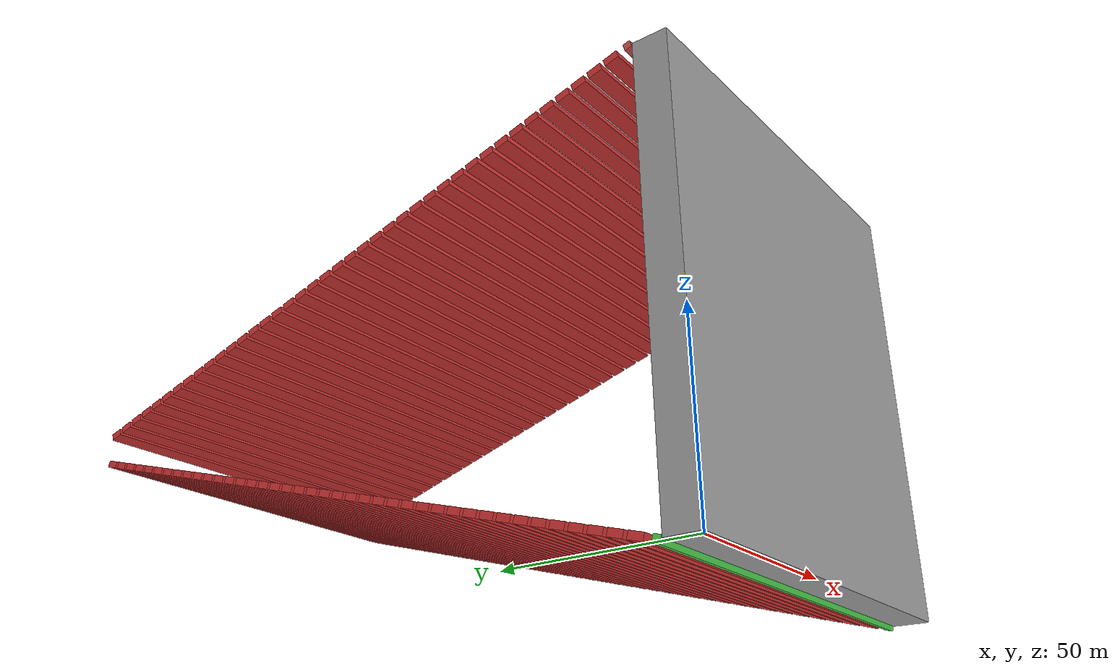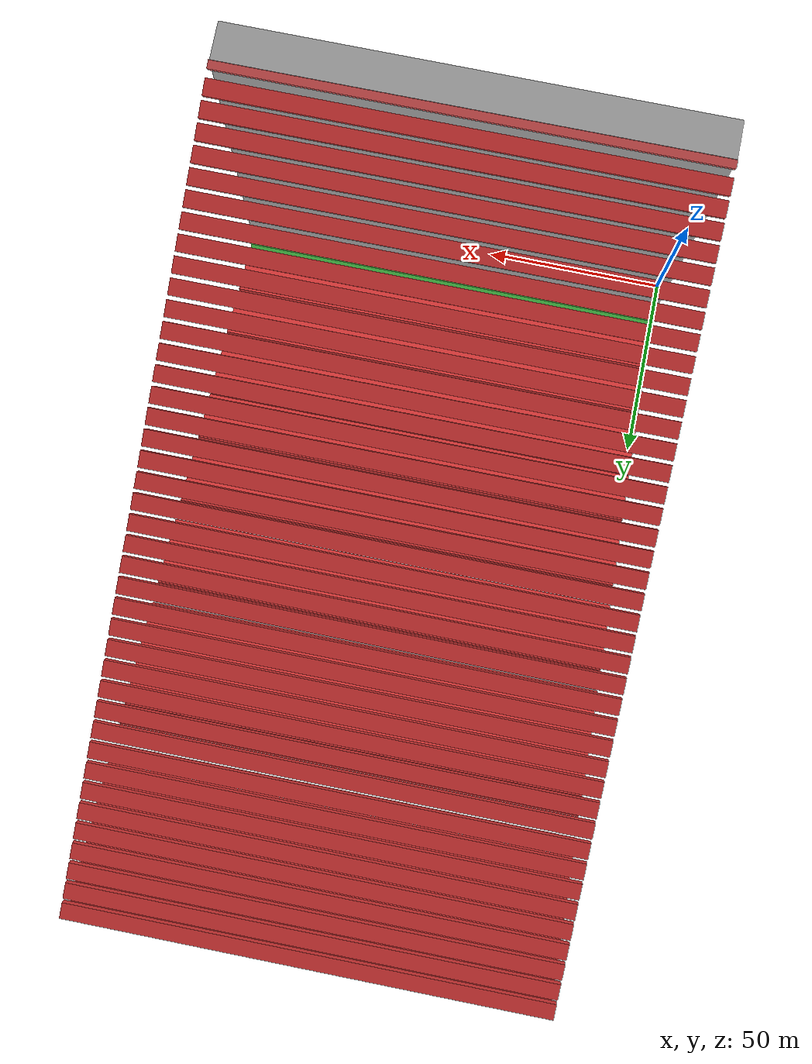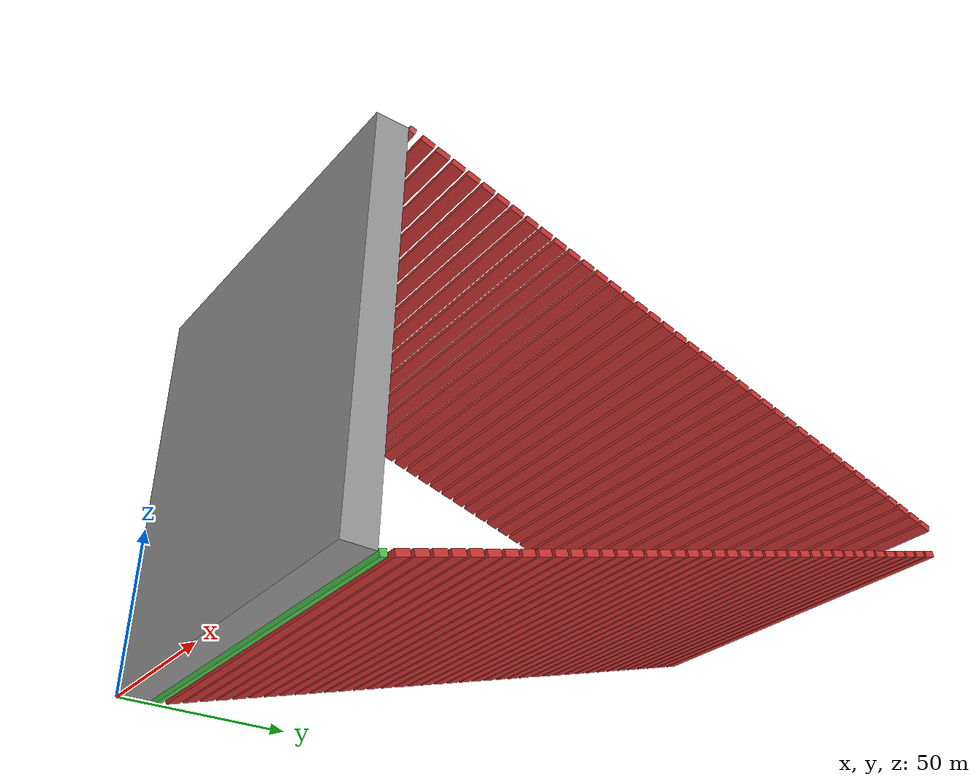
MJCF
<?xml version="1.0" ?>
<mujoco>
  <worldbody>
    <body name="base_box" pos="60 4.77 60.877">
      <geom type="box" size="60 4.7 60" rgba="0.6 0.6 0.6 1" density="1"/>
      <body name="small_box_1" pos="0 6 60" euler="-16 0 0">
        <geom type="box" size="60 1 1" rgba="0.8 0.3 0.3 1"/>
        <joint type="hinge" name="joint_0" axis="1 0 0" pos="0 0 0" range="-90 90" stiffness="50000" damping="0" springref="0"/>
        <body name="block_2" pos="0 5 0">
          <geom type="box" size="60 2 1" rgba="0.8 0.2 0.2 1" density="1000"/>
          <joint type="hinge" name="joint_2" axis="1 0 0" range="-90 90" pos="0 0 0" stiffness="50000" damping="0" springref="0" actuatorfrclimited="false"/>
          <body name="block_3" pos="0 5 0">
            <geom type="box" size="60 2 1" rgba="0.8 0.2 0.2 1" density="1000"/>
            <joint type="hinge" name="joint_3" axis="1 0 0" range="-90 90" pos="0 0 0" stiffness="50000" damping="0" springref="0" actuatorfrclimited="false"/>
            <body name="block_4" pos="0 5 0">
              <geom type="box" size="60 2 1" rgba="0.8 0.2 0.2 1" density="1000"/>
              <joint type="hinge" name="joint_4" axis="1 0 0" range="-90 90" pos="0 0 0" stiffness="50000" damping="0" springref="0" actuatorfrclimited="false"/>
              <body name="block_5" pos="0 5 0">
                <geom type="box" size="60 2 1" rgba="0.8 0.2 0.2 1" density="1000"/>
                <joint type="hinge" name="joint_5" axis="1 0 0" range="-90 90" pos="0 0 0" stiffness="50000" damping="0" springref="0" actuatorfrclimited="false"/>
                <body name="block_6" pos="0 5 0">
                  <geom type="box" size="60 2 1" rgba="0.8 0.2 0.2 1" density="1000"/>
                  <joint type="hinge" name="joint_6" axis="1 0 0" range="-90 90" pos="0 0 0" stiffness="50000" damping="0" springref="0" actuatorfrclimited="false"/>
                  <body name="block_7" pos="0 5 0">
                    <geom type="box" size="60 2 1" rgba="0.8 0.2 0.2 1" density="1000"/>
                    <joint type="hinge" name="joint_7" axis="1 0 0" range="-90 90" pos="0 0 0" stiffness="50000" damping="0" springref="0" actuatorfrclimited="false"/>
                    <body name="block_8" pos="0 5 0">
                      <geom type="box" size="60 2 1" rgba="0.8 0.2 0.2 1" density="1000"/>
                      <joint type="hinge" name="joint_8" axis="1 0 0" range="-90 90" pos="0 0 0" stiffness="50000" damping="0" springref="0" actuatorfrclimited="false"/>
                      <body name="block_9" pos="0 5 0">
                        <geom type="box" size="60 2 1" rgba="0.8 0.2 0.2 1" density="1000"/>
                        <joint type="hinge" name="joint_9" axis="1 0 0" range="-90 90" pos="0 0 0" stiffness="50000" damping="0" springref="0" actuatorfrclimited="false"/>
                        <body name="block_10" pos="0 5 0">
                          <geom type="box" size="60 2 1" rgba="0.8 0.2 0.2 1" density="1000"/>
                          <joint type="hinge" name="joint_10" axis="1 0 0" range="-90 90" pos="0 0 0" stiffness="50000" damping="0" springref="0" actuatorfrclimited="false"/>
                          <body name="block_11" pos="0 5 0">
                            <geom type="box" size="60 2 1" rgba="0.8 0.2 0.2 1" density="1000"/>
                            <joint type="hinge" name="joint_11" axis="1 0 0" range="-90 90" pos="0 0 0" stiffness="50000" damping="0" springref="0" actuatorfrclimited="false"/>
                            <body name="block_12" pos="0 5 0">
                              <geom type="box" size="60 2 1" rgba="0.8 0.2 0.2 1" density="1000"/>
                              <joint type="hinge" name="joint_12" axis="1 0 0" range="-90 90" pos="0 0 0" stiffness="50000" damping="0" springref="0" actuatorfrclimited="false"/>
                              <body name="block_13" pos="0 5 0">
                                <geom type="box" size="60 2 1" rgba="0.8 0.2 0.2 1" density="1000"/>
                                <joint type="hinge" name="joint_13" axis="1 0 0" range="-90 90" pos="0 0 0" stiffness="50000" damping="0" springref="0" actuatorfrclimited="false"/>
                                <body name="block_14" pos="0 5 0">
                                  <geom type="box" size="60 2 1" rgba="0.8 0.2 0.2 1" density="1000"/>
                                  <joint type="hinge" name="joint_14" axis="1 0 0" range="-90 90" pos="0 0 0" stiffness="50000" damping="0" springref="0" actuatorfrclimited="false"/>
                                  <body name="block_15" pos="0 5 0">
                                    <geom type="box" size="60 2 1" rgba="0.8 0.2 0.2 1" density="1000"/>
                                    <joint type="hinge" name="joint_15" axis="1 0 0" range="-90 90" pos="0 0 0" stiffness="50000" damping="0" springref="0" actuatorfrclimited="false"/>
                                    <body name="block_16" pos="0 5 0">
                                      <geom type="box" size="60 2 1" rgba="0.8 0.2 0.2 1" density="1000"/>
                                      <joint type="hinge" name="joint_16" axis="1 0 0" range="-90 90" pos="0 0 0" stiffness="50000" damping="0" springref="0" actuatorfrclimited="false"/>
                                      <body name="block_17" pos="0 5 0">
                                        <geom type="box" size="60 2 1" rgba="0.8 0.2 0.2 1" density="1000"/>
                                        <joint type="hinge" name="joint_17" axis="1 0 0" range="-90 90" pos="0 0 0" stiffness="50000" damping="0" springref="0" actuatorfrclimited="false"/>
                                        <body name="block_18" pos="0 5 0">
                                          <geom type="box" size="60 2 1" rgba="0.8 0.2 0.2 1" density="1000"/>
                                          <joint type="hinge" name="joint_18" axis="1 0 0" range="-90 90" pos="0 0 0" stiffness="50000" damping="0" springref="0" actuatorfrclimited="false"/>
                                          <body name="block_19" pos="0 5 0">
                                            <geom type="box" size="60 2 1" rgba="0.8 0.2 0.2 1" density="1000"/>
                                            <joint type="hinge" name="joint_19" axis="1 0 0" range="-90 90" pos="0 0 0" stiffness="50000" damping="0" springref="0" actuatorfrclimited="false"/>
                                            <body name="block_20" pos="0 5 0">
                                              <geom type="box" size="60 2 1" rgba="0.8 0.2 0.2 1" density="1000"/>
                                              <joint type="hinge" name="joint_20" axis="1 0 0" range="-90 90" pos="0 0 0" stiffness="50000" damping="0" springref="0" actuatorfrclimited="false"/>
                                              <body name="block_21" pos="0 5 0">
                                                <geom type="box" size="60 2 1" rgba="0.8 0.2 0.2 1" density="1000"/>
                                                <joint type="hinge" name="joint_21" axis="1 0 0" range="-90 90" pos="0 0 0" stiffness="50000" damping="0" springref="0" actuatorfrclimited="false"/>
                                                <body name="block_22" pos="0 5 0">
                                                  <geom type="box" size="60 2 1" rgba="0.8 0.2 0.2 1" density="1000"/>
                                                  <joint type="hinge" name="joint_22" axis="1 0 0" range="-90 90" pos="0 0 0" stiffness="50000" damping="0" springref="0" actuatorfrclimited="false"/>
                                                  <body name="block_23" pos="0 5 0">
                                                    <geom type="box" size="60 2 1" rgba="0.8 0.2 0.2 1" density="1000"/>
                                                    <joint type="hinge" name="joint_23" axis="1 0 0" range="-90 90" pos="0 0 0" stiffness="50000" damping="0" springref="0" actuatorfrclimited="false"/>
                                                    <body name="block_24" pos="0 5 0">
                                                      <geom type="box" size="60 2 1" rgba="0.8 0.2 0.2 1" density="1000"/>
                                                      <joint type="hinge" name="joint_24" axis="1 0 0" range="-90 90" pos="0 0 0" stiffness="50000" damping="0" springref="0" actuatorfrclimited="false"/>
                                                      <body name="block_25" pos="0 5 0">
                                                        <geom type="box" size="60 2 1" rgba="0.8 0.2 0.2 1" density="1000"/>
                                                        <joint type="hinge" name="joint_25" axis="1 0 0" range="-90 90" pos="0 0 0" stiffness="50000" damping="0" springref="0" actuatorfrclimited="false"/>
                                                        <body name="block_26" pos="0 5 0">
                                                          <geom type="box" size="60 2 1" rgba="0.8 0.2 0.2 1" density="1000"/>
                                                          <joint type="hinge" name="joint_26" axis="1 0 0" range="-90 90" pos="0 0 0" stiffness="50000" damping="0" springref="0" actuatorfrclimited="false"/>
                                                          <body name="block_27" pos="0 5 0">
                                                            <geom type="box" size="60 2 1" rgba="0.8 0.2 0.2 1" density="1000"/>
                                                            <joint type="hinge" name="joint_27" axis="1 0 0" range="-90 90" pos="0 0 0" stiffness="50000" damping="0" springref="0" actuatorfrclimited="false"/>
                                                            <body name="block_28" pos="0 5 0">
                                                              <geom type="box" size="60 2 1" rgba="0.8 0.2 0.2 1" density="1000"/>
                                                              <joint type="hinge" name="joint_28" axis="1 0 0" range="-90 90" pos="0 0 0" stiffness="50000" damping="0" springref="0" actuatorfrclimited="false"/>
                                                              <body name="block_29" pos="0 5 0">
                                                                <geom type="box" size="60 2 1" rgba="0.8 0.2 0.2 1" density="1000"/>
                                                                <joint type="hinge" name="joint_29" axis="1 0 0" range="-90 90" pos="0 0 0" stiffness="50000" damping="0" springref="0" actuatorfrclimited="false"/>
                                                                <body name="block_30" pos="0 5 0">
                                                                  <geom type="box" size="60 2 1" rgba="0.8 0.2 0.2 1" density="1000"/>
                                                                  <joint type="hinge" name="joint_30" axis="1 0 0" range="-90 90" pos="0 0 0" stiffness="50000" damping="0" springref="0" actuatorfrclimited="false"/>
                                                                  <body name="block_31" pos="0 5 0">
                                                                    <geom type="box" size="60 2 1" rgba="0.8 0.2 0.2 1" density="1000"/>
                                                                    <joint type="hinge" name="joint_31" axis="1 0 0" range="-90 90" pos="0 0 0" stiffness="50000" damping="0" springref="0" actuatorfrclimited="false"/>
                                                                    <body name="block_32" pos="0 5 0">
                                                                      <geom type="box" size="60 2 1" rgba="0.8 0.2 0.2 1" density="1000"/>
                                                                      <joint type="hinge" name="joint_32" axis="1 0 0" range="-90 90" pos="0 0 0" stiffness="50000" damping="0" springref="0" actuatorfrclimited="false"/>
                                                                      <body name="block_33" pos="0 5 0">
                                                                        <geom type="box" size="60 2 1" rgba="0.8 0.2 0.2 1" density="1000"/>
                                                                        <joint type="hinge" name="joint_33" axis="1 0 0" range="-90 90" pos="0 0 0" stiffness="50000" damping="0" springref="0" actuatorfrclimited="false"/>
                                                                        <body name="block_34" pos="0 5 0">
                                                                          <geom type="box" size="60 2 1" rgba="0.8 0.2 0.2 1" density="1000"/>
                                                                          <joint type="hinge" name="joint_34" axis="1 0 0" range="-90 90" pos="0 0 0" stiffness="50000" damping="0" springref="0" actuatorfrclimited="false"/>
                                                                          <body name="block_35" pos="0 5 0">
                                                                            <geom type="box" size="60 2 1" rgba="0.8 0.2 0.2 1" density="1000"/>
                                                                            <joint type="hinge" name="joint_35" axis="1 0 0" range="-90 90" pos="0 0 0" stiffness="50000" damping="0" springref="0" actuatorfrclimited="false"/>
                                                                            <body name="block_36" pos="0 5 0">
                                                                              <geom type="box" size="60 2 1" rgba="0.8 0.2 0.2 1" density="1000"/>
                                                                              <joint type="hinge" name="joint_36" axis="1 0 0" range="-90 90" pos="0 0 0" stiffness="50000" damping="0" springref="0" actuatorfrclimited="false"/>
                                                                              <body name="block_37" pos="0 5 0">
                                                                                <geom type="box" size="60 2 1" rgba="0.8 0.2 0.2 1" density="1000"/>
                                                                                <joint type="hinge" name="joint_37" axis="1 0 0" range="-90 90" pos="0 0 0" stiffness="50000" damping="0" springref="0" actuatorfrclimited="false"/>
                                                                                <body name="block_38" pos="0 5 0">
                                                                                  <geom type="box" size="60 2 1" rgba="0.8 0.2 0.2 1" density="1000"/>
                                                                                  <joint type="hinge" name="joint_38" axis="1 0 0" range="-90 90" pos="0 0 0" stiffness="50000" damping="0" springref="0" actuatorfrclimited="false"/>
                                                                                  <body name="block_39" pos="0 5 0">
                                                                                    <geom type="box" size="60 2 1" rgba="0.8 0.2 0.2 1" density="1000"/>
                                                                                    <joint type="hinge" name="joint_39" axis="1 0 0" range="-90 90" pos="0 0 0" stiffness="50000" damping="0" springref="0" actuatorfrclimited="false"/>
                                                                                    <body name="block_40" pos="0 5 0">
                                                                                      <geom type="box" size="60 2 1" rgba="0.8 0.2 0.2 1" density="1000"/>
                                                                                      <joint type="hinge" name="joint_40" axis="1 0 0" range="-90 90" pos="0 0 0" stiffness="50000" damping="0" springref="0" actuatorfrclimited="false"/>
                                                                                      <body name="block_41" pos="0 5 0">
                                                                                        <geom type="box" size="60 2 1" rgba="0.8 0.2 0.2 1" density="1000"/>
                                                                                        <joint type="hinge" name="joint_41" axis="1 0 0" range="-90 90" pos="0 0 0" stiffness="50000" damping="0" springref="0" actuatorfrclimited="false"/>
                                                                                      </body>
                                                                                    </body>
                                                                                  </body>
                                                                                </body>
                                                                              </body>
                                                                            </body>
                                                                          </body>
                                                                        </body>
                                                                      </body>
                                                                    </body>
                                                                  </body>
                                                                </body>
                                                              </body>
                                                            </body>
                                                          </body>
                                                        </body>
                                                      </body>
                                                    </body>
                                                  </body>
                                                </body>
                                              </body>
                                            </body>
                                          </body>
                                        </body>
                                      </body>
                                    </body>
                                  </body>
                                </body>
                              </body>
                            </body>
                          </body>
                        </body>
                      </body>
                    </body>
                  </body>
                </body>
              </body>
            </body>
          </body>
        </body>
      </body>
      <body name="small_box_2" pos="0 6 -60" euler="16 0 0">
        <geom type="box" size="60 1 1" rgba="0.3 0.8 0.3 1"/>
        <joint type="hinge" name="joint_1" axis="1 0 0" pos="0 0 0" range="-90 90" stiffness="50000" damping="0" springref="0"/>
        <body name="block_42" pos="0 5 0">
          <geom type="box" size="60 2 1" rgba="0.8 0.2 0.2 1" density="1000"/>
          <joint type="hinge" name="joint_42" axis="1 0 0" range="-90 90" pos="0 0 0" stiffness="50000" damping="0" springref="0" actuatorfrclimited="false"/>
          <body name="block_43" pos="0 5 0">
            <geom type="box" size="60 2 1" rgba="0.8 0.2 0.2 1" density="1000"/>
            <joint type="hinge" name="joint_43" axis="1 0 0" range="-90 90" pos="0 0 0" stiffness="50000" damping="0" springref="0" actuatorfrclimited="false"/>
            <body name="block_44" pos="0 5 0">
              <geom type="box" size="60 2 1" rgba="0.8 0.2 0.2 1" density="1000"/>
              <joint type="hinge" name="joint_44" axis="1 0 0" range="-90 90" pos="0 0 0" stiffness="50000" damping="0" springref="0" actuatorfrclimited="false"/>
              <body name="block_45" pos="0 5 0">
                <geom type="box" size="60 2 1" rgba="0.8 0.2 0.2 1" density="1000"/>
                <joint type="hinge" name="joint_45" axis="1 0 0" range="-90 90" pos="0 0 0" stiffness="50000" damping="0" springref="0" actuatorfrclimited="false"/>
                <body name="block_46" pos="0 5 0">
                  <geom type="box" size="60 2 1" rgba="0.8 0.2 0.2 1" density="1000"/>
                  <joint type="hinge" name="joint_46" axis="1 0 0" range="-90 90" pos="0 0 0" stiffness="50000" damping="0" springref="0" actuatorfrclimited="false"/>
                  <body name="block_47" pos="0 5 0">
                    <geom type="box" size="60 2 1" rgba="0.8 0.2 0.2 1" density="1000"/>
                    <joint type="hinge" name="joint_47" axis="1 0 0" range="-90 90" pos="0 0 0" stiffness="50000" damping="0" springref="0" actuatorfrclimited="false"/>
                    <body name="block_48" pos="0 5 0">
                      <geom type="box" size="60 2 1" rgba="0.8 0.2 0.2 1" density="1000"/>
                      <joint type="hinge" name="joint_48" axis="1 0 0" range="-90 90" pos="0 0 0" stiffness="50000" damping="0" springref="0" actuatorfrclimited="false"/>
                      <body name="block_49" pos="0 5 0">
                        <geom type="box" size="60 2 1" rgba="0.8 0.2 0.2 1" density="1000"/>
                        <joint type="hinge" name="joint_49" axis="1 0 0" range="-90 90" pos="0 0 0" stiffness="50000" damping="0" springref="0" actuatorfrclimited="false"/>
                        <body name="block_50" pos="0 5 0">
                          <geom type="box" size="60 2 1" rgba="0.8 0.2 0.2 1" density="1000"/>
                          <joint type="hinge" name="joint_50" axis="1 0 0" range="-90 90" pos="0 0 0" stiffness="50000" damping="0" springref="0" actuatorfrclimited="false"/>
                          <body name="block_51" pos="0 5 0">
                            <geom type="box" size="60 2 1" rgba="0.8 0.2 0.2 1" density="1000"/>
                            <joint type="hinge" name="joint_51" axis="1 0 0" range="-90 90" pos="0 0 0" stiffness="50000" damping="0" springref="0" actuatorfrclimited="false"/>
                            <body name="block_52" pos="0 5 0">
                              <geom type="box" size="60 2 1" rgba="0.8 0.2 0.2 1" density="1000"/>
                              <joint type="hinge" name="joint_52" axis="1 0 0" range="-90 90" pos="0 0 0" stiffness="50000" damping="0" springref="0" actuatorfrclimited="false"/>
                              <body name="block_53" pos="0 5 0">
                                <geom type="box" size="60 2 1" rgba="0.8 0.2 0.2 1" density="1000"/>
                                <joint type="hinge" name="joint_53" axis="1 0 0" range="-90 90" pos="0 0 0" stiffness="50000" damping="0" springref="0" actuatorfrclimited="false"/>
                                <body name="block_54" pos="0 5 0">
                                  <geom type="box" size="60 2 1" rgba="0.8 0.2 0.2 1" density="1000"/>
                                  <joint type="hinge" name="joint_54" axis="1 0 0" range="-90 90" pos="0 0 0" stiffness="50000" damping="0" springref="0" actuatorfrclimited="false"/>
                                  <body name="block_55" pos="0 5 0">
                                    <geom type="box" size="60 2 1" rgba="0.8 0.2 0.2 1" density="1000"/>
                                    <joint type="hinge" name="joint_55" axis="1 0 0" range="-90 90" pos="0 0 0" stiffness="50000" damping="0" springref="0" actuatorfrclimited="false"/>
                                    <body name="block_56" pos="0 5 0">
                                      <geom type="box" size="60 2 1" rgba="0.8 0.2 0.2 1" density="1000"/>
                                      <joint type="hinge" name="joint_56" axis="1 0 0" range="-90 90" pos="0 0 0" stiffness="50000" damping="0" springref="0" actuatorfrclimited="false"/>
                                      <body name="block_57" pos="0 5 0">
                                        <geom type="box" size="60 2 1" rgba="0.8 0.2 0.2 1" density="1000"/>
                                        <joint type="hinge" name="joint_57" axis="1 0 0" range="-90 90" pos="0 0 0" stiffness="50000" damping="0" springref="0" actuatorfrclimited="false"/>
                                        <body name="block_58" pos="0 5 0">
                                          <geom type="box" size="60 2 1" rgba="0.8 0.2 0.2 1" density="1000"/>
                                          <joint type="hinge" name="joint_58" axis="1 0 0" range="-90 90" pos="0 0 0" stiffness="50000" damping="0" springref="0" actuatorfrclimited="false"/>
                                          <body name="block_59" pos="0 5 0">
                                            <geom type="box" size="60 2 1" rgba="0.8 0.2 0.2 1" density="1000"/>
                                            <joint type="hinge" name="joint_59" axis="1 0 0" range="-90 90" pos="0 0 0" stiffness="50000" damping="0" springref="0" actuatorfrclimited="false"/>
                                            <body name="block_60" pos="0 5 0">
                                              <geom type="box" size="60 2 1" rgba="0.8 0.2 0.2 1" density="1000"/>
                                              <joint type="hinge" name="joint_60" axis="1 0 0" range="-90 90" pos="0 0 0" stiffness="50000" damping="0" springref="0" actuatorfrclimited="false"/>
                                              <body name="block_61" pos="0 5 0">
                                                <geom type="box" size="60 2 1" rgba="0.8 0.2 0.2 1" density="1000"/>
                                                <joint type="hinge" name="joint_61" axis="1 0 0" range="-90 90" pos="0 0 0" stiffness="50000" damping="0" springref="0" actuatorfrclimited="false"/>
                                                <body name="block_62" pos="0 5 0">
                                                  <geom type="box" size="60 2 1" rgba="0.8 0.2 0.2 1" density="1000"/>
                                                  <joint type="hinge" name="joint_62" axis="1 0 0" range="-90 90" pos="0 0 0" stiffness="50000" damping="0" springref="0" actuatorfrclimited="false"/>
                                                  <body name="block_63" pos="0 5 0">
                                                    <geom type="box" size="60 2 1" rgba="0.8 0.2 0.2 1" density="1000"/>
                                                    <joint type="hinge" name="joint_63" axis="1 0 0" range="-90 90" pos="0 0 0" stiffness="50000" damping="0" springref="0" actuatorfrclimited="false"/>
                                                    <body name="block_64" pos="0 5 0">
                                                      <geom type="box" size="60 2 1" rgba="0.8 0.2 0.2 1" density="1000"/>
                                                      <joint type="hinge" name="joint_64" axis="1 0 0" range="-90 90" pos="0 0 0" stiffness="50000" damping="0" springref="0" actuatorfrclimited="false"/>
                                                      <body name="block_65" pos="0 5 0">
                                                        <geom type="box" size="60 2 1" rgba="0.8 0.2 0.2 1" density="1000"/>
                                                        <joint type="hinge" name="joint_65" axis="1 0 0" range="-90 90" pos="0 0 0" stiffness="50000" damping="0" springref="0" actuatorfrclimited="false"/>
                                                        <body name="block_66" pos="0 5 0">
                                                          <geom type="box" size="60 2 1" rgba="0.8 0.2 0.2 1" density="1000"/>
                                                          <joint type="hinge" name="joint_66" axis="1 0 0" range="-90 90" pos="0 0 0" stiffness="50000" damping="0" springref="0" actuatorfrclimited="false"/>
                                                          <body name="block_67" pos="0 5 0">
                                                            <geom type="box" size="60 2 1" rgba="0.8 0.2 0.2 1" density="1000"/>
                                                            <joint type="hinge" name="joint_67" axis="1 0 0" range="-90 90" pos="0 0 0" stiffness="50000" damping="0" springref="0" actuatorfrclimited="false"/>
                                                            <body name="block_68" pos="0 5 0">
                                                              <geom type="box" size="60 2 1" rgba="0.8 0.2 0.2 1" density="1000"/>
                                                              <joint type="hinge" name="joint_68" axis="1 0 0" range="-90 90" pos="0 0 0" stiffness="50000" damping="0" springref="0" actuatorfrclimited="false"/>
                                                              <body name="block_69" pos="0 5 0">
                                                                <geom type="box" size="60 2 1" rgba="0.8 0.2 0.2 1" density="1000"/>
                                                                <joint type="hinge" name="joint_69" axis="1 0 0" range="-90 90" pos="0 0 0" stiffness="50000" damping="0" springref="0" actuatorfrclimited="false"/>
                                                                <body name="block_70" pos="0 5 0">
                                                                  <geom type="box" size="60 2 1" rgba="0.8 0.2 0.2 1" density="1000"/>
                                                                  <joint type="hinge" name="joint_70" axis="1 0 0" range="-90 90" pos="0 0 0" stiffness="50000" damping="0" springref="0" actuatorfrclimited="false"/>
                                                                  <body name="block_71" pos="0 5 0">
                                                                    <geom type="box" size="60 2 1" rgba="0.8 0.2 0.2 1" density="1000"/>
                                                                    <joint type="hinge" name="joint_71" axis="1 0 0" range="-90 90" pos="0 0 0" stiffness="50000" damping="0" springref="0" actuatorfrclimited="false"/>
                                                                    <body name="block_72" pos="0 5 0">
                                                                      <geom type="box" size="60 2 1" rgba="0.8 0.2 0.2 1" density="1000"/>
                                                                      <joint type="hinge" name="joint_72" axis="1 0 0" range="-90 90" pos="0 0 0" stiffness="50000" damping="0" springref="0" actuatorfrclimited="false"/>
                                                                      <body name="block_73" pos="0 5 0">
                                                                        <geom type="box" size="60 2 1" rgba="0.8 0.2 0.2 1" density="1000"/>
                                                                        <joint type="hinge" name="joint_73" axis="1 0 0" range="-90 90" pos="0 0 0" stiffness="50000" damping="0" springref="0" actuatorfrclimited="false"/>
                                                                        <body name="block_74" pos="0 5 0">
                                                                          <geom type="box" size="60 2 1" rgba="0.8 0.2 0.2 1" density="1000"/>
                                                                          <joint type="hinge" name="joint_74" axis="1 0 0" range="-90 90" pos="0 0 0" stiffness="50000" damping="0" springref="0" actuatorfrclimited="false"/>
                                                                          <body name="block_75" pos="0 5 0">
                                                                            <geom type="box" size="60 2 1" rgba="0.8 0.2 0.2 1" density="1000"/>
                                                                            <joint type="hinge" name="joint_75" axis="1 0 0" range="-90 90" pos="0 0 0" stiffness="50000" damping="0" springref="0" actuatorfrclimited="false"/>
                                                                            <body name="block_76" pos="0 5 0">
                                                                              <geom type="box" size="60 2 1" rgba="0.8 0.2 0.2 1" density="1000"/>
                                                                              <joint type="hinge" name="joint_76" axis="1 0 0" range="-90 90" pos="0 0 0" stiffness="50000" damping="0" springref="0" actuatorfrclimited="false"/>
                                                                              <body name="block_77" pos="0 5 0">
                                                                                <geom type="box" size="60 2 1" rgba="0.8 0.2 0.2 1" density="1000"/>
                                                                                <joint type="hinge" name="joint_77" axis="1 0 0" range="-90 90" pos="0 0 0" stiffness="50000" damping="0" springref="0" actuatorfrclimited="false"/>
                                                                                <body name="block_78" pos="0 5 0">
                                                                                  <geom type="box" size="60 2 1" rgba="0.8 0.2 0.2 1" density="1000"/>
                                                                                  <joint type="hinge" name="joint_78" axis="1 0 0" range="-90 90" pos="0 0 0" stiffness="50000" damping="0" springref="0" actuatorfrclimited="false"/>
                                                                                  <body name="block_79" pos="0 5 0">
                                                                                    <geom type="box" size="60 2 1" rgba="0.8 0.2 0.2 1" density="1000"/>
                                                                                    <joint type="hinge" name="joint_79" axis="1 0 0" range="-90 90" pos="0 0 0" stiffness="50000" damping="0" springref="0" actuatorfrclimited="false"/>
                                                                                    <body name="block_80" pos="0 5 0">
                                                                                      <geom type="box" size="60 2 1" rgba="0.8 0.2 0.2 1" density="1000"/>
                                                                                      <joint type="hinge" name="joint_80" axis="1 0 0" range="-90 90" pos="0 0 0" stiffness="50000" damping="0" springref="0" actuatorfrclimited="false"/>
                                                                                      <body name="block_81" pos="0 5 0">
                                                                                        <geom type="box" size="60 2 1" rgba="0.8 0.2 0.2 1" density="1000"/>
                                                                                        <joint type="hinge" name="joint_81" axis="1 0 0" range="-90 90" pos="0 0 0" stiffness="50000" damping="0" springref="0" actuatorfrclimited="false"/>
                                                                                      </body>
                                                                                    </body>
                                                                                  </body>
                                                                                </body>
                                                                              </body>
                                                                            </body>
                                                                          </body>
                                                                        </body>
                                                                      </body>
                                                                    </body>
                                                                  </body>
                                                                </body>
                                                              </body>
                                                            </body>
                                                          </body>
                                                        </body>
                                                      </body>
                                                    </body>
                                                  </body>
                                                </body>
                                              </body>
                                            </body>
                                          </body>
                                        </body>
                                      </body>
                                    </body>
                                  </body>
                                </body>
                              </body>
                            </body>
                          </body>
                        </body>
                      </body>
                    </body>
                  </body>
                </body>
              </body>
            </body>
          </body>
        </body>
      </body>
    </body>
  </worldbody>
  <actuator>
    <position joint="joint_0" ctrlrange="-1 1" gear="100" kp="99999999" kv="2000"/>
    <position joint="joint_1" ctrlrange="-1 1" gear="100" kp="99999999" kv="2000"/>
    <position joint="joint_2" ctrlrange="-1 1" gear="100" kp="99999999" kv="2000"/>
    <position joint="joint_3" ctrlrange="-1 1" gear="100" kp="99999999" kv="2000"/>
    <position joint="joint_4" ctrlrange="-1 1" gear="100" kp="99999999" kv="2000"/>
    <position joint="joint_5" ctrlrange="-1 1" gear="100" kp="99999999" kv="2000"/>
    <position joint="joint_6" ctrlrange="-1 1" gear="100" kp="99999999" kv="2000"/>
    <position joint="joint_7" ctrlrange="-1 1" gear="100" kp="99999999" kv="2000"/>
    <position joint="joint_8" ctrlrange="-1 1" gear="100" kp="99999999" kv="2000"/>
    <position joint="joint_9" ctrlrange="-1 1" gear="100" kp="99999999" kv="2000"/>
    <position joint="joint_10" ctrlrange="-1 1" gear="100" kp="99999999" kv="2000"/>
    <position joint="joint_11" ctrlrange="-1 1" gear="100" kp="99999999" kv="2000"/>
    <position joint="joint_12" ctrlrange="-1 1" gear="100" kp="99999999" kv="2000"/>
    <position joint="joint_13" ctrlrange="-1 1" gear="100" kp="99999999" kv="2000"/>
    <position joint="joint_14" ctrlrange="-1 1" gear="100" kp="99999999" kv="2000"/>
    <position joint="joint_15" ctrlrange="-1 1" gear="100" kp="99999999" kv="2000"/>
    <position joint="joint_16" ctrlrange="-1 1" gear="100" kp="99999999" kv="2000"/>
    <position joint="joint_17" ctrlrange="-1 1" gear="100" kp="99999999" kv="2000"/>
    <position joint="joint_18" ctrlrange="-1 1" gear="100" kp="99999999" kv="2000"/>
    <position joint="joint_19" ctrlrange="-1 1" gear="100" kp="99999999" kv="2000"/>
    <position joint="joint_20" ctrlrange="-1 1" gear="100" kp="99999999" kv="2000"/>
    <position joint="joint_21" ctrlrange="-1 1" gear="100" kp="99999999" kv="2000"/>
    <position joint="joint_22" ctrlrange="-1 1" gear="100" kp="99999999" kv="2000"/>
    <position joint="joint_23" ctrlrange="-1 1" gear="100" kp="99999999" kv="2000"/>
    <position joint="joint_24" ctrlrange="-1 1" gear="100" kp="99999999" kv="2000"/>
    <position joint="joint_25" ctrlrange="-1 1" gear="100" kp="99999999" kv="2000"/>
    <position joint="joint_26" ctrlrange="-1 1" gear="100" kp="99999999" kv="2000"/>
    <position joint="joint_27" ctrlrange="-1 1" gear="100" kp="99999999" kv="2000"/>
    <position joint="joint_28" ctrlrange="-1 1" gear="100" kp="99999999" kv="2000"/>
    <position joint="joint_29" ctrlrange="-1 1" gear="100" kp="99999999" kv="2000"/>
    <position joint="joint_30" ctrlrange="-1 1" gear="100" kp="99999999" kv="2000"/>
    <position joint="joint_31" ctrlrange="-1 1" gear="100" kp="99999999" kv="2000"/>
    <position joint="joint_32" ctrlrange="-1 1" gear="100" kp="99999999" kv="2000"/>
    <position joint="joint_33" ctrlrange="-1 1" gear="100" kp="99999999" kv="2000"/>
    <position joint="joint_34" ctrlrange="-1 1" gear="100" kp="99999999" kv="2000"/>
    <position joint="joint_35" ctrlrange="-1 1" gear="100" kp="99999999" kv="2000"/>
    <position joint="joint_36" ctrlrange="-1 1" gear="100" kp="99999999" kv="2000"/>
    <position joint="joint_37" ctrlrange="-1 1" gear="100" kp="99999999" kv="2000"/>
    <position joint="joint_38" ctrlrange="-1 1" gear="100" kp="99999999" kv="2000"/>
    <position joint="joint_39" ctrlrange="-1 1" gear="100" kp="99999999" kv="2000"/>
    <position joint="joint_40" ctrlrange="-1 1" gear="100" kp="99999999" kv="2000"/>
    <position joint="joint_41" ctrlrange="-1 1" gear="100" kp="99999999" kv="2000"/>
    <position joint="joint_42" ctrlrange="-1 1" gear="100" kp="99999999" kv="2000"/>
    <position joint="joint_43" ctrlrange="-1 1" gear="100" kp="99999999" kv="2000"/>
    <position joint="joint_44" ctrlrange="-1 1" gear="100" kp="99999999" kv="2000"/>
    <position joint="joint_45" ctrlrange="-1 1" gear="100" kp="99999999" kv="2000"/>
    <position joint="joint_46" ctrlrange="-1 1" gear="100" kp="99999999" kv="2000"/>
    <position joint="joint_47" ctrlrange="-1 1" gear="100" kp="99999999" kv="2000"/>
    <position joint="joint_48" ctrlrange="-1 1" gear="100" kp="99999999" kv="2000"/>
    <position joint="joint_49" ctrlrange="-1 1" gear="100" kp="99999999" kv="2000"/>
    <position joint="joint_50" ctrlrange="-1 1" gear="100" kp="99999999" kv="2000"/>
    <position joint="joint_51" ctrlrange="-1 1" gear="100" kp="99999999" kv="2000"/>
    <position joint="joint_52" ctrlrange="-1 1" gear="100" kp="99999999" kv="2000"/>
    <position joint="joint_53" ctrlrange="-1 1" gear="100" kp="99999999" kv="2000"/>
    <position joint="joint_54" ctrlrange="-1 1" gear="100" kp="99999999" kv="2000"/>
    <position joint="joint_55" ctrlrange="-1 1" gear="100" kp="99999999" kv="2000"/>
    <position joint="joint_56" ctrlrange="-1 1" gear="100" kp="99999999" kv="2000"/>
    <position joint="joint_57" ctrlrange="-1 1" gear="100" kp="99999999" kv="2000"/>
    <position joint="joint_58" ctrlrange="-1 1" gear="100" kp="99999999" kv="2000"/>
    <position joint="joint_59" ctrlrange="-1 1" gear="100" kp="99999999" kv="2000"/>
    <position joint="joint_60" ctrlrange="-1 1" gear="100" kp="99999999" kv="2000"/>
    <position joint="joint_61" ctrlrange="-1 1" gear="100" kp="99999999" kv="2000"/>
    <position joint="joint_62" ctrlrange="-1 1" gear="100" kp="99999999" kv="2000"/>
    <position joint="joint_63" ctrlrange="-1 1" gear="100" kp="99999999" kv="2000"/>
    <position joint="joint_64" ctrlrange="-1 1" gear="100" kp="99999999" kv="2000"/>
    <position joint="joint_65" ctrlrange="-1 1" gear="100" kp="99999999" kv="2000"/>
    <position joint="joint_66" ctrlrange="-1 1" gear="100" kp="99999999" kv="2000"/>
    <position joint="joint_67" ctrlrange="-1 1" gear="100" kp="99999999" kv="2000"/>
    <position joint="joint_68" ctrlrange="-1 1" gear="100" kp="99999999" kv="2000"/>
    <position joint="joint_69" ctrlrange="-1 1" gear="100" kp="99999999" kv="2000"/>
    <position joint="joint_70" ctrlrange="-1 1" gear="100" kp="99999999" kv="2000"/>
    <position joint="joint_71" ctrlrange="-1 1" gear="100" kp="99999999" kv="2000"/>
    <position joint="joint_72" ctrlrange="-1 1" gear="100" kp="99999999" kv="2000"/>
    <position joint="joint_73" ctrlrange="-1 1" gear="100" kp="99999999" kv="2000"/>
    <position joint="joint_74" ctrlrange="-1 1" gear="100" kp="99999999" kv="2000"/>
    <position joint="joint_75" ctrlrange="-1 1" gear="100" kp="99999999" kv="2000"/>
    <position joint="joint_76" ctrlrange="-1 1" gear="100" kp="99999999" kv="2000"/>
    <position joint="joint_77" ctrlrange="-1 1" gear="100" kp="99999999" kv="2000"/>
    <position joint="joint_78" ctrlrange="-1 1" gear="100" kp="99999999" kv="2000"/>
    <position joint="joint_79" ctrlrange="-1 1" gear="100" kp="99999999" kv="2000"/>
    <position joint="joint_80" ctrlrange="-1 1" gear="100" kp="99999999" kv="2000"/>
    <position joint="joint_81" ctrlrange="-1 1" gear="100" kp="99999999" kv="2000"/>
  </actuator>
</mujoco>
